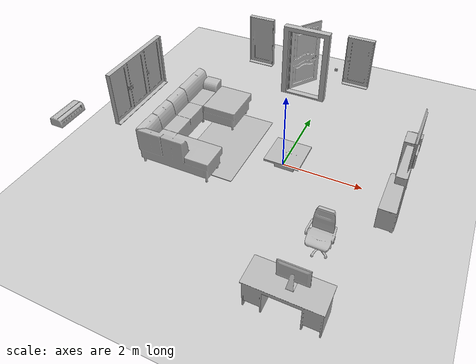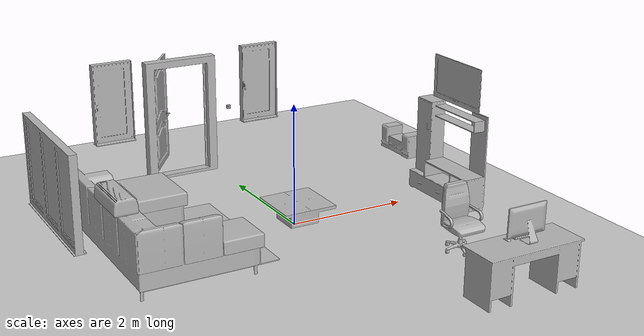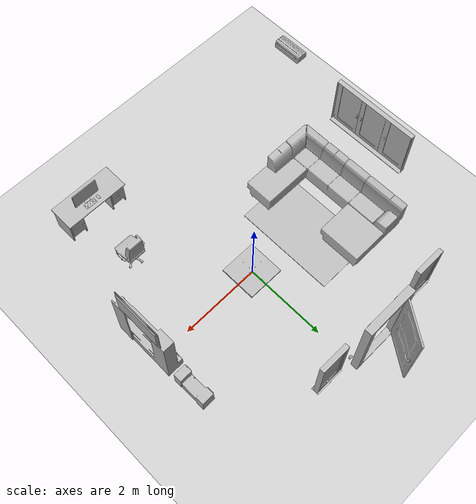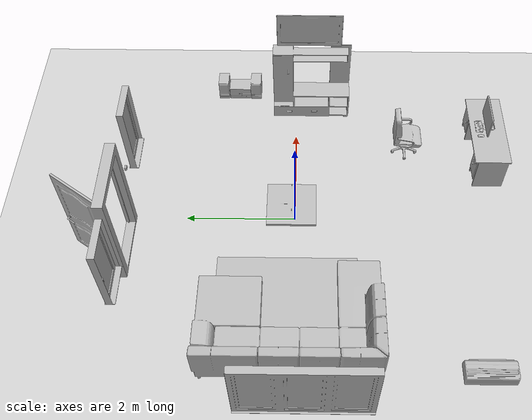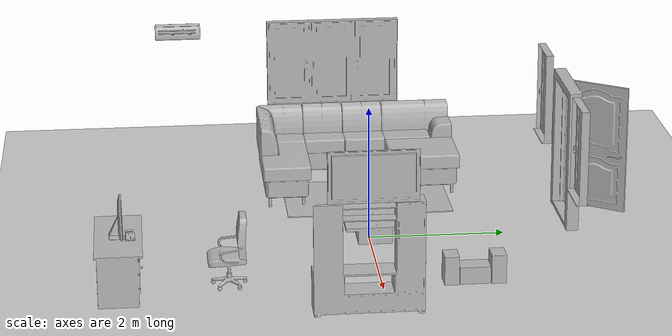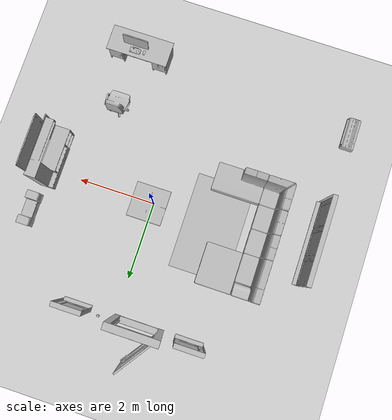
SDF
<sdf version="1.4">
 <world name="default">
  <light name="sun" type="directional">
   <pose>0 0 10 0 -0 0</pose>
   <diffuse>0.8 0.8 0.8 1</diffuse>
   <specular>0.2 0.2 0.2 1</specular>
   <attenuation>
    <range>1000</range>
    <constant>0.9</constant>
    <linear>0.01</linear>
    <quadratic>0.001</quadratic>
   </attenuation>
   <direction>-0.5 0.1 -0.9</direction>
  </light>
  <model name="ground_plane">
   <static>1</static>
   <link name="link">
    <collision name="collision">
     <geometry><plane><normal>0 0 1</normal><size>100 100</size></plane></geometry>
     <surface><friction><ode><mu>100</mu><mu2>50</mu2></ode></friction></surface>
    </collision>
    <visual name="visual">
     <cast_shadows>0</cast_shadows>
     <geometry><plane><normal>0 0 1</normal><size>100 100</size></plane></geometry>
     <material>
      <script><uri>file://media/materials/scripts/gazebo.material</uri><name>Gazebo/Grey</name></script>
     </material>
    </visual>
    <velocity_decay><linear>0</linear><angular>0</angular></velocity_decay>
   </link>
  </model>
  <physics type="ode">
   <max_step_size>0.001</max_step_size>
   <real_time_factor>1</real_time_factor>
   <real_time_update_rate>1000</real_time_update_rate>
   <gravity>0 0 -9.8</gravity>
  </physics>
  <scene><ambient>0.4 0.4 0.4 1</ambient><background>0.7 0.7 0.7 1</background><shadows>1</shadows></scene>
  <spherical_coordinates>
   <surface_model>EARTH_WGS84</surface_model>
   <latitude_deg>0</latitude_deg>
   <longitude_deg>0</longitude_deg>
   <elevation>0</elevation>
   <heading_deg>0</heading_deg>
  </spherical_coordinates>
  <model name="73_0">
   <pose>-0.618536 3.03039 0 0 0 -1.57079</pose>
   <static>1</static>
   <link name="link">
    <collision name="collision"><geometry><box><size>1.0004 1.30004 2</size></box></geometry></collision>
    <visual name="visual"><geometry><mesh><uri>model://73/73.dae</uri></mesh></geometry></visual>
    <velocity_decay><linear>0</linear><angular>0</angular></velocity_decay>
   </link>
  </model>
  <model name="211_0">
   <pose>-3.90549 -0.180534 0.83 0 -0 0</pose>
   <static>1</static>
   <link name="link">
    <collision name="collision"><geometry><box><size>0.175 2.1 2</size></box></geometry></collision>
    <visual name="visual"><geometry><mesh><uri>model://211/211.dae</uri></mesh></geometry></visual>
    <velocity_decay><linear>0</linear><angular>0</angular></velocity_decay>
   </link>
  </model>
  <model name="213_0">
   <pose>0.875466 2.93473 0.83 0 0 -1.5708</pose>
   <static>1</static>
   <link name="link">
    <collision name="collision"><geometry><box><size>0.175 0.7 2</size></box></geometry></collision>
    <visual name="visual"><geometry><mesh><uri>model://213/213.dae</uri></mesh></geometry></visual>
    <velocity_decay><linear>0</linear><angular>0</angular></velocity_decay>
   </link>
  </model>
  <model name="213_1">
   <pose>-1.89453 2.93246 0.83 0 0 -1.5708</pose>
   <static>1</static>
   <link name="link">
    <collision name="collision"><geometry><box><size>0.175 0.7 2</size></box></geometry></collision>
    <visual name="visual"><geometry><mesh><uri>model://213/213.dae</uri></mesh></geometry></visual>
    <velocity_decay><linear>0</linear><angular>0</angular></velocity_decay>
   </link>
  </model>
  <model name="167_0">
   <pose>-2.23453 0.063468 0.03 0 -0 0</pose>
   <static>1</static>
   <link name="link">
    <collision name="collision"><geometry><box><size>1.93296 3.03706 2</size></box></geometry></collision>
    <visual name="visual"><geometry><mesh><uri>model://167/167.dae</uri></mesh></geometry></visual>
    <velocity_decay><linear>0</linear><angular>0</angular></velocity_decay>
   </link>
  </model>
  <model name="228_0">
   <pose>2.93446 -0.236531 1.62713 0 0 -3.14159</pose>
   <static>1</static>
   <link name="link">
    <collision name="collision"><geometry><box><size>0.05 1.24002 2</size></box></geometry></collision>
    <visual name="visual"><geometry><mesh><uri>model://228/228.dae</uri></mesh></geometry></visual>
    <velocity_decay><linear>0</linear><angular>0</angular></velocity_decay>
   </link>
  </model>
  <model name="238_0">
   <pose>-1.61053 0.123467 0.03 0 -0 0</pose>
   <static>1</static>
   <link name="link">
    <collision name="collision"><geometry><box><size>1.5 2.5 0</size></box></geometry></collision>
    <visual name="visual"><geometry><mesh><uri>model://238/238.dae</uri></mesh></geometry></visual>
    <velocity_decay><linear>0</linear><angular>0</angular></velocity_decay>
   </link>
  </model>
  <model name="218_0">
   <pose>2.81388 1.13147 0.43 0 0 -3.14159</pose>
   <static>1</static>
   <link name="link">
    <collision name="collision"><geometry><box><size>0.318 0.84 2</size></box></geometry></collision>
    <visual name="visual"><geometry><mesh><uri>model://218/218.dae</uri></mesh></geometry></visual>
    <velocity_decay><linear>0</linear><angular>0</angular></velocity_decay>
   </link>
  </model>
  <model name="279_0">
   <pose>0.297472 2.9814 1.08884 0 0 -1.5708</pose>
   <static>1</static>
   <link name="link">
    <collision name="collision"><geometry><box><size>0.05 0.07 2</size></box></geometry></collision>
    <visual name="visual"><geometry><mesh><uri>model://279/279.dae</uri></mesh></geometry></visual>
    <velocity_decay><linear>0</linear><angular>0</angular></velocity_decay>
   </link>
  </model>
  <model name="577_0">
   <pose>2.74816 -0.296535 0.03 0 0 -3.14159</pose>
   <static>1</static>
   <link name="link">
    <collision name="collision"><geometry><box><size>0.430754 1.51002 2</size></box></geometry></collision>
    <visual name="visual"><geometry><mesh><uri>model://577/577.dae</uri></mesh></geometry></visual>
    <velocity_decay><linear>0</linear><angular>0</angular></velocity_decay>
   </link>
  </model>
  <model name="589_0">
   <pose>0.096199 0.063468 0.03 0 -0 0</pose>
   <static>1</static>
   <link name="link">
    <collision name="collision"><geometry><box><size>0.9 0.9 2</size></box></geometry></collision>
    <visual name="visual"><geometry><mesh><uri>model://589/589.dae</uri></mesh></geometry></visual>
    <velocity_decay><linear>0</linear><angular>0</angular></velocity_decay>
   </link>
  </model>
  <model name="107_0">
   <pose>1.56947 -3.64345 0.03 0 -0 1.5708</pose>
   <static>1</static>
   <link name="link">
    <collision name="collision"><geometry><box><size>0.66 1.6 2</size></box></geometry></collision>
    <visual name="visual"><geometry><mesh><uri>model://107/107.dae</uri></mesh></geometry></visual>
    <velocity_decay><linear>0</linear><angular>0</angular></velocity_decay>
   </link>
  </model>
  <model name="106_0">
   <pose>1.67747 -2.15653 0.03 0 -0 1.5708</pose>
   <static>1</static>
   <link name="link">
    <collision name="collision"><geometry><box><size>0.550393 0.596196 2</size></box></geometry></collision>
    <visual name="visual"><geometry><mesh><uri>model://106/106.dae</uri></mesh></geometry></visual>
    <velocity_decay><linear>0</linear><angular>0</angular></velocity_decay>
   </link>
  </model>
  <model name="189_0">
   <pose>1.64146 -3.59043 0.782224 0 -0 1.5708</pose>
   <static>1</static>
   <link name="link">
    <collision name="collision"><geometry><box><size>0.359507 0.6495 2</size></box></geometry></collision>
    <visual name="visual"><geometry><mesh><uri>model://189/189.dae</uri></mesh></geometry></visual>
    <velocity_decay><linear>0</linear><angular>0</angular></velocity_decay>
   </link>
  </model>
  <model name="225_0">
   <pose>-3.86093 -2.64853 2.03 0 -0 0</pose>
   <static>1</static>
   <link name="link">
    <collision name="collision"><geometry><box><size>0.31 0.710003 2</size></box></geometry></collision>
    <visual name="visual"><geometry><mesh><uri>model://225/225.dae</uri></mesh></geometry></visual>
    <velocity_decay><linear>0</linear><angular>0</angular></velocity_decay>
   </link>
  </model>
 </world>
</sdf>
